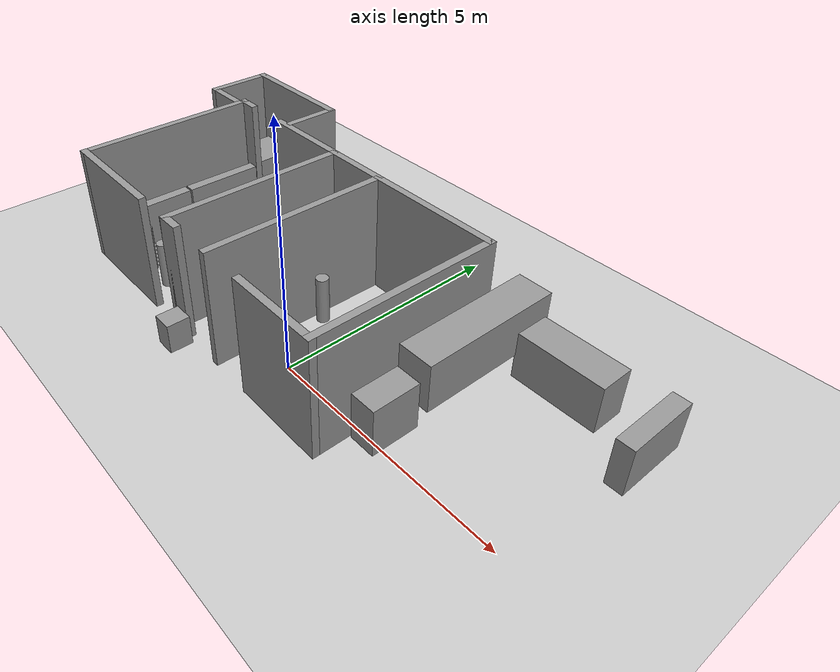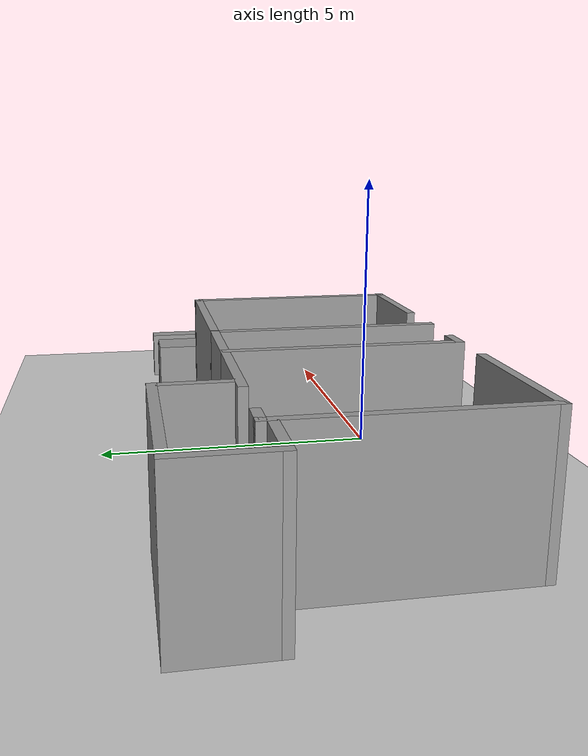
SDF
<sdf version="1.9">
 <world name="default">
  <model name="ground_plane">
   <static>true</static>
   <link name="link">
    <collision name="collision">
     <geometry><plane><normal>0 0 1</normal><size>100 100</size></plane></geometry>
     <surface><friction><ode><mu>100</mu><mu2>50</mu2></ode></friction></surface>
    </collision>
    <visual name="visual">
     <cast_shadows>false</cast_shadows>
     <geometry><plane><normal>0 0 1</normal><size>100 100</size></plane></geometry>
     <material>
      <script><uri>file://media/materials/scripts/gazebo.material</uri><name>Gazebo/Grey</name></script>
     </material>
    </visual>
   </link>
  </model>
  <model name="cma_escritorio">
   <pose>-1.8304 1.03024 0 0 0 0</pose>
   <link name="Wall_11">
    <collision name="Wall_11_Collision">
     <geometry><box><size>2 0.14999999999999999 2.5</size></box></geometry>
     <pose>0 0 1.25 0 0 0</pose>
    </collision>
    <visual name="Wall_11_Visual">
     <pose>0 0 1.25 0 0 0</pose>
     <geometry><box><size>2 0.14999999999999999 2.5</size></box></geometry>
     <material>
      <script><uri>file://media/materials/scripts/gazebo.material</uri><name>Gazebo/Grey</name></script>
      <ambient>1 1 1 1</ambient>
     </material>
    </visual>
    <pose>-1.3999999999999999 1.9299999999999999 0 0 0 3.1415899999999999</pose>
   </link>
   <link name="Wall_2">
    <collision name="Wall_2_Collision">
     <geometry><box><size>4 0.14999999999999999 2.5</size></box></geometry>
     <pose>0 0 1.25 0 0 0</pose>
    </collision>
    <visual name="Wall_2_Visual">
     <pose>0 0 1.25 0 0 0</pose>
     <geometry><box><size>4 0.14999999999999999 2.5</size></box></geometry>
     <material>
      <script><uri>file://media/materials/scripts/gazebo.material</uri><name>Gazebo/Grey</name></script>
      <ambient>1 1 1 1</ambient>
     </material>
    </visual>
    <pose>0.875 0.0050000000000000001 0 0 0 1.5708</pose>
   </link>
   <link name="Wall_25">
    <collision name="Wall_25_Collision">
     <geometry><box><size>2.5 0.14999999999999999 2.5</size></box></geometry>
     <pose>0 0 1.25 0 0 0</pose>
    </collision>
    <visual name="Wall_25_Visual">
     <pose>0 0 1.25 0 0 0</pose>
     <geometry><box><size>2.5 0.14999999999999999 2.5</size></box></geometry>
     <material>
      <script><uri>file://media/materials/scripts/gazebo.material</uri><name>Gazebo/Grey</name></script>
      <ambient>1 1 1 1</ambient>
     </material>
    </visual>
    <pose>-2.5499999999999998 -1.9299999999999999 0 0 0 3.1415899999999999</pose>
   </link>
   <link name="Wall_26">
    <collision name="Wall_26_Collision">
     <geometry><box><size>4 0.14999999999999999 2.5</size></box></geometry>
     <pose>0 0 1.25 0 0 0</pose>
    </collision>
    <visual name="Wall_26_Visual">
     <pose>0 0 1.25 0 0 0</pose>
     <geometry><box><size>4 0.14999999999999999 2.5</size></box></geometry>
     <material>
      <script><uri>file://media/materials/scripts/gazebo.material</uri><name>Gazebo/Grey</name></script>
      <ambient>1 1 1 1</ambient>
     </material>
    </visual>
    <pose>-3.7250000000000001 -0.0050000000000000001 0 0 0 1.5708</pose>
   </link>
   <link name="Wall_27">
    <collision name="Wall_27_Collision">
     <geometry><box><size>0.5 0.14999999999999999 2.5</size></box></geometry>
     <pose>0 0 1.25 0 0 0</pose>
    </collision>
    <visual name="Wall_27_Visual">
     <pose>0 0 1.25 0 0 0</pose>
     <geometry><box><size>0.5 0.14999999999999999 2.5</size></box></geometry>
     <material>
      <script><uri>file://media/materials/scripts/gazebo.material</uri><name>Gazebo/Grey</name></script>
      <ambient>1 1 1 1</ambient>
     </material>
    </visual>
    <pose>-3.5499999999999998 1.9199999999999999 0 0 0 0</pose>
   </link>
   <link name="Wall_3">
    <collision name="Wall_3_Collision">
     <geometry><box><size>3 0.14999999999999999 2.5</size></box></geometry>
     <pose>0 0 1.25 0 0 0</pose>
    </collision>
    <visual name="Wall_3_Visual">
     <pose>0 0 1.25 0 0 0</pose>
     <geometry><box><size>3 0.14999999999999999 2.5</size></box></geometry>
     <material>
      <script><uri>file://media/materials/scripts/gazebo.material</uri><name>Gazebo/Grey</name></script>
      <ambient>1 1 1 1</ambient>
     </material>
    </visual>
    <pose>2.2999999999999998 1.9299999999999999 0 0 0 0</pose>
   </link>
   <link name="Wall_4">
    <collision name="Wall_4_Collision">
     <geometry><box><size>4 0.14999999999999999 2.5</size></box></geometry>
     <pose>0 0 1.25 0 0 0</pose>
    </collision>
    <visual name="Wall_4_Visual">
     <pose>0 0 1.25 0 0 0</pose>
     <geometry><box><size>4 0.14999999999999999 2.5</size></box></geometry>
     <material>
      <script><uri>file://media/materials/scripts/gazebo.material</uri><name>Gazebo/Grey</name></script>
      <ambient>1 1 1 1</ambient>
     </material>
    </visual>
    <pose>3.7250000000000001 0.0050000000000000001 0 0 0 -1.5708</pose>
   </link>
   <link name="Wall_5">
    <collision name="Wall_5_Collision">
     <geometry><box><size>2 0.14999999999999999 2.5</size></box></geometry>
     <pose>0 0 1.25 0 0 0</pose>
    </collision>
    <visual name="Wall_5_Visual">
     <pose>0 0 1.25 0 0 0</pose>
     <geometry><box><size>2 0.14999999999999999 2.5</size></box></geometry>
     <material>
      <script><uri>file://media/materials/scripts/gazebo.material</uri><name>Gazebo/Grey</name></script>
      <ambient>1 1 1 1</ambient>
     </material>
    </visual>
    <pose>2.7999999999999998 -1.9199999999999999 0 0 0 3.1415899999999999</pose>
   </link>
   <link name="Wall_7">
    <collision name="Wall_7_Collision">
     <geometry><box><size>1.5 0.14999999999999999 2.5</size></box></geometry>
     <pose>0 0 1.25 0 0 0</pose>
    </collision>
    <visual name="Wall_7_Visual">
     <pose>0 0 1.25 0 0 0</pose>
     <geometry><box><size>1.5 0.14999999999999999 2.5</size></box></geometry>
     <material>
      <script><uri>file://media/materials/scripts/gazebo.material</uri><name>Gazebo/Grey</name></script>
      <ambient>1 1 1 1</ambient>
     </material>
    </visual>
    <pose>0.20000000000000001 1.9299999999999999 0 0 0 3.1415899999999999</pose>
   </link>
   <link name="Wall_8">
    <collision name="Wall_8_Collision">
     <geometry><box><size>4 0.14999999999999999 2.5</size></box></geometry>
     <pose>0 0 1.25 0 0 0</pose>
    </collision>
    <visual name="Wall_8_Visual">
     <pose>0 0 1.25 0 0 0</pose>
     <geometry><box><size>4 0.14999999999999999 2.5</size></box></geometry>
     <material>
      <script><uri>file://media/materials/scripts/gazebo.material</uri><name>Gazebo/Grey</name></script>
      <ambient>1 1 1 1</ambient>
     </material>
    </visual>
    <pose>-0.47499999999999998 0.0050000000000000001 0 0 0 -1.5708</pose>
   </link>
   <link name="Wall_9">
    <collision name="Wall_9_Collision">
     <geometry><box><size>0.5 0.14999999999999999 2.5</size></box></geometry>
     <pose>0 0 1.25 0 0 0</pose>
    </collision>
    <visual name="Wall_9_Visual">
     <pose>0 0 1.25 0 0 0</pose>
     <geometry><box><size>0.5 0.14999999999999999 2.5</size></box></geometry>
     <material>
      <script><uri>file://media/materials/scripts/gazebo.material</uri><name>Gazebo/Grey</name></script>
      <ambient>1 1 1 1</ambient>
     </material>
    </visual>
    <pose>-0.29999999999999999 -1.9199999999999999 0 0 0 0</pose>
   </link>
   <static>true</static>
  </model>
  <model name="cma_banheiro">
   <pose>-5.2292800000000002 3.4870999999999999 0 0 0 0</pose>
   <link name="Wall_0">
    <collision name="Wall_0_Collision">
     <geometry><box><size>1 0.14999999999999999 2.5</size></box></geometry>
     <pose>0 0 1.25 0 0 0</pose>
    </collision>
    <visual name="Wall_0_Visual">
     <pose>0 0 1.25 0 0 0</pose>
     <geometry><box><size>1 0.14999999999999999 2.5</size></box></geometry>
     <material>
      <script><uri>file://media/materials/scripts/gazebo.material</uri><name>Gazebo/Grey</name></script>
      <ambient>1 1 1 1</ambient>
     </material>
    </visual>
    <pose>-0.875 -0.67500000000000004 0 0 0 3.1415899999999999</pose>
   </link>
   <link name="Wall_1">
    <collision name="Wall_1_Collision">
     <geometry><box><size>1.5 0.14999999999999999 2.5</size></box></geometry>
     <pose>0 0 1.25 0 0 0</pose>
    </collision>
    <visual name="Wall_1_Visual">
     <pose>0 0 1.25 0 0 0</pose>
     <geometry><box><size>1.5 0.14999999999999999 2.5</size></box></geometry>
     <material>
      <script><uri>file://media/materials/scripts/gazebo.material</uri><name>Gazebo/Grey</name></script>
      <ambient>1 1 1 1</ambient>
     </material>
    </visual>
    <pose>-1.3 0 0 0 0 1.5708</pose>
   </link>
   <link name="Wall_2">
    <collision name="Wall_2_Collision">
     <geometry><box><size>2.75 0.14999999999999999 2.5</size></box></geometry>
     <pose>0 0 1.25 0 0 0</pose>
    </collision>
    <visual name="Wall_2_Visual">
     <pose>0 0 1.25 0 0 0</pose>
     <geometry><box><size>2.75 0.14999999999999999 2.5</size></box></geometry>
     <material>
      <script><uri>file://media/materials/scripts/gazebo.material</uri><name>Gazebo/Grey</name></script>
      <ambient>1 1 1 1</ambient>
     </material>
    </visual>
    <pose>0 0.67500000000000004 0 0 0 0</pose>
   </link>
   <link name="Wall_4">
    <collision name="Wall_4_Collision">
     <geometry><box><size>1.25 0.14999999999999999 2.5</size></box></geometry>
     <pose>0 0 1.25 0 0 0</pose>
    </collision>
    <visual name="Wall_4_Visual">
     <pose>0 0 1.25 0 0 0</pose>
     <geometry><box><size>1.25 0.14999999999999999 2.5</size></box></geometry>
     <material>
      <script><uri>file://media/materials/scripts/gazebo.material</uri><name>Gazebo/Grey</name></script>
      <ambient>1 1 1 1</ambient>
     </material>
    </visual>
    <pose>1.3 0.125 0 0 0 -1.5708</pose>
   </link>
   <static>true</static>
  </model>
  <model name="cma_lixo_0">
   <link name="link_1">
    <pose>0.88296200000000002 1.81586 0.5 0 0 0</pose>
    <inertial>
     <mass>0.068764400000000003</mass>
     <inertia>
      <ixx>0.00602588</ixx>
      <ixy>0</ixy>
      <ixz>0</ixz>
      <iyy>0.00602588</iyy>
      <iyz>0</iyz>
      <izz>0.00059106800000000004</izz>
     </inertia>
    </inertial>
    <visual name="visual">
     <geometry><cylinder><radius>0.13111200000000001</radius><length>1</length></cylinder></geometry>
     <material>
      <lighting>true</lighting>
      <script><uri>file://media/materials/scripts/gazebo.material</uri><name>Gazebo/Grey</name></script>
      <ambient>0.300000012 0.300000012 0.300000012 1</ambient>
      <diffuse>0.699999988 0.699999988 0.699999988 1</diffuse>
      <specular>0.00999999978 0.00999999978 0.00999999978 1</specular>
      <emissive>0 0 0 1</emissive>
     </material>
    </visual>
    <collision name="collision">
     <geometry><cylinder><radius>0.13111200000000001</radius><length>1</length></cylinder></geometry>
     <surface>
      <friction>
       <ode><mu>1</mu><mu2>1</mu2><fdir1>0 0 0</fdir1><slip1>0</slip1><slip2>0</slip2></ode>
       <torsional>
        <coefficient>1</coefficient>
        <patch_radius>0</patch_radius>
        <surface_radius>0</surface_radius>
        <use_patch_radius>true</use_patch_radius>
        <ode><slip>0</slip></ode>
       </torsional>
      </friction>
      <bounce><restitution_coefficient>0</restitution_coefficient><threshold>1000000</threshold></bounce>
      <contact>
       <collide_without_contact>false</collide_without_contact>
       <collide_without_contact_bitmask>1</collide_without_contact_bitmask>
       <collide_bitmask>1</collide_bitmask>
       <ode>
        <soft_cfm>0</soft_cfm>
        <soft_erp>0.20000000000000001</soft_erp>
        <kp>10000000000000</kp>
        <kd>1</kd>
        <max_vel>0.01</max_vel>
        <min_depth>0</min_depth>
       </ode>
       <bullet>
        <split_impulse>true</split_impulse>
        <split_impulse_penetration_threshold>-0.01</split_impulse_penetration_threshold>
        <soft_cfm>0</soft_cfm>
        <soft_erp>0.20000000000000001</soft_erp>
        <kp>10000000000000</kp>
        <kd>1</kd>
       </bullet>
      </contact>
     </surface>
    </collision>
   </link>
   <static>false</static>
   <pose>-1.6093500000000001 -0.44273099999999999 -9.9999999999999995e-07 0 0 -0.0097769999999999992</pose>
  </model>
  <model name="cma_bau_s">
   <link name="link_1">
    <pose>0.109594 0.27229300000000001 0 0 0 0</pose>
    <inertial>
     <mass>0.12547900000000001</mass>
     <inertia>
      <ixx>0.0064194300000000003</ixx>
      <ixy>0</ixy>
      <ixz>0</ixz>
      <iyy>0.0059753999999999996</iyy>
      <iyz>0</iyz>
      <izz>0.0042208499999999999</izz>
     </inertia>
    </inertial>
    <visual name="visual">
     <geometry><box><size>0.42496400000000001 0.47228300000000001 0.62511799999999995</size></box></geometry>
     <material>
      <lighting>true</lighting>
      <script><uri>file://media/materials/scripts/gazebo.material</uri><name>Gazebo/Grey</name></script>
      <ambient>0.300000012 0.300000012 0.300000012 1</ambient>
      <diffuse>0.699999988 0.699999988 0.699999988 1</diffuse>
      <specular>0.00999999978 0.00999999978 0.00999999978 1</specular>
      <emissive>0 0 0 1</emissive>
     </material>
    </visual>
    <collision name="collision">
     <geometry><box><size>0.42496400000000001 0.47228300000000001 0.62511799999999995</size></box></geometry>
     <surface>
      <friction>
       <ode><mu>1</mu><mu2>1</mu2><fdir1>0 0 0</fdir1><slip1>0</slip1><slip2>0</slip2></ode>
       <torsional>
        <coefficient>1</coefficient>
        <patch_radius>0</patch_radius>
        <surface_radius>0</surface_radius>
        <use_patch_radius>true</use_patch_radius>
        <ode><slip>0</slip></ode>
       </torsional>
      </friction>
      <bounce><restitution_coefficient>0</restitution_coefficient><threshold>1000000</threshold></bounce>
      <contact>
       <collide_without_contact>false</collide_without_contact>
       <collide_without_contact_bitmask>1</collide_without_contact_bitmask>
       <collide_bitmask>1</collide_bitmask>
       <ode>
        <soft_cfm>0</soft_cfm>
        <soft_erp>0.20000000000000001</soft_erp>
        <kp>10000000000000</kp>
        <kd>1</kd>
        <max_vel>0.01</max_vel>
        <min_depth>0</min_depth>
       </ode>
       <bullet>
        <split_impulse>true</split_impulse>
        <split_impulse_penetration_threshold>-0.01</split_impulse_penetration_threshold>
        <soft_cfm>0</soft_cfm>
        <soft_erp>0.20000000000000001</soft_erp>
        <kp>10000000000000</kp>
        <kd>1</kd>
       </bullet>
      </contact>
     </surface>
    </collision>
   </link>
   <static>false</static>
   <pose>-2.0429400000000002 -1.48569 0.31255300000000003 1.2999999999999999e-05 -3.0000000000000005e-06 0.00013300000000000001</pose>
  </model>
  <model name="cma_cama_c_0">
   <link name="link_0">
    <pose>5.0000000000000004e-06 -3.9999999999999998e-06 0 0 0 0</pose>
    <inertial>
     <mass>3.1835800000000001</mass>
     <inertia>
      <ixx>0.93486199999999997</ixx>
      <ixy>0</ixy>
      <ixz>0</ixz>
      <iyy>1.3306899999999999</iyy>
      <iyz>0</iyz>
      <izz>1.7349600000000001</izz>
     </inertia>
    </inertial>
    <visual name="visual">
     <geometry><box><size>2.0039400000000001 1.58866 1</size></box></geometry>
     <material>
      <lighting>true</lighting>
      <script><uri>file://media/materials/scripts/gazebo.material</uri><name>Gazebo/Grey</name></script>
      <ambient>0.300000012 0.300000012 0.300000012 1</ambient>
      <diffuse>0.699999988 0.699999988 0.699999988 1</diffuse>
      <specular>0.00999999978 0.00999999978 0.00999999978 1</specular>
      <emissive>0 0 0 1</emissive>
     </material>
    </visual>
    <collision name="collision">
     <geometry><box><size>2.0039400000000001 1.58866 1</size></box></geometry>
     <surface>
      <friction>
       <ode><mu>1</mu><mu2>1</mu2><fdir1>0 0 0</fdir1><slip1>0</slip1><slip2>0</slip2></ode>
       <torsional>
        <coefficient>1</coefficient>
        <patch_radius>0</patch_radius>
        <surface_radius>0</surface_radius>
        <use_patch_radius>true</use_patch_radius>
        <ode><slip>0</slip></ode>
       </torsional>
      </friction>
      <bounce><restitution_coefficient>0</restitution_coefficient><threshold>1000000</threshold></bounce>
      <contact>
       <collide_without_contact>false</collide_without_contact>
       <collide_without_contact_bitmask>1</collide_without_contact_bitmask>
       <collide_bitmask>1</collide_bitmask>
       <ode>
        <soft_cfm>0</soft_cfm>
        <soft_erp>0.20000000000000001</soft_erp>
        <kp>10000000000000</kp>
        <kd>1</kd>
        <max_vel>0.01</max_vel>
        <min_depth>0</min_depth>
       </ode>
       <bullet>
        <split_impulse>true</split_impulse>
        <split_impulse_penetration_threshold>-0.01</split_impulse_penetration_threshold>
        <soft_cfm>0</soft_cfm>
        <soft_erp>0.20000000000000001</soft_erp>
        <kp>10000000000000</kp>
        <kd>1</kd>
       </bullet>
      </contact>
     </surface>
    </collision>
   </link>
   <static>false</static>
   <pose>-3.3823799999999999 1.3878699999999999 0.5 0 0 -2.0000000000000003e-06</pose>
  </model>
  <model name="cma_bau_s_0">
   <link name="link_1">
    <pose>0.109594 0.27229300000000001 0 0 0 0</pose>
    <inertial>
     <mass>0.12547900000000001</mass>
     <inertia>
      <ixx>0.0064194300000000003</ixx>
      <ixy>0</ixy>
      <ixz>0</ixz>
      <iyy>0.0059753999999999996</iyy>
      <iyz>0</iyz>
      <izz>0.0042208499999999999</izz>
     </inertia>
    </inertial>
    <visual name="visual">
     <geometry><box><size>0.42496400000000001 0.47228300000000001 0.62511799999999995</size></box></geometry>
     <material>
      <lighting>true</lighting>
      <script><uri>file://media/materials/scripts/gazebo.material</uri><name>Gazebo/Grey</name></script>
      <ambient>0.300000012 0.300000012 0.300000012 1</ambient>
      <diffuse>0.699999988 0.699999988 0.699999988 1</diffuse>
      <specular>0.00999999978 0.00999999978 0.00999999978 1</specular>
      <emissive>0 0 0 1</emissive>
     </material>
    </visual>
    <collision name="collision">
     <geometry><box><size>0.42496400000000001 0.47228300000000001 0.62511799999999995</size></box></geometry>
     <surface>
      <friction>
       <ode><mu>1</mu><mu2>1</mu2><fdir1>0 0 0</fdir1><slip1>0</slip1><slip2>0</slip2></ode>
       <torsional>
        <coefficient>1</coefficient>
        <patch_radius>0</patch_radius>
        <surface_radius>0</surface_radius>
        <use_patch_radius>true</use_patch_radius>
        <ode><slip>0</slip></ode>
       </torsional>
      </friction>
      <bounce><restitution_coefficient>0</restitution_coefficient><threshold>1000000</threshold></bounce>
      <contact>
       <collide_without_contact>false</collide_without_contact>
       <collide_without_contact_bitmask>1</collide_without_contact_bitmask>
       <collide_bitmask>1</collide_bitmask>
       <ode>
        <soft_cfm>0</soft_cfm>
        <soft_erp>0.20000000000000001</soft_erp>
        <kp>10000000000000</kp>
        <kd>1</kd>
        <max_vel>0.01</max_vel>
        <min_depth>0</min_depth>
       </ode>
       <bullet>
        <split_impulse>true</split_impulse>
        <split_impulse_penetration_threshold>-0.01</split_impulse_penetration_threshold>
        <soft_cfm>0</soft_cfm>
        <soft_erp>0.20000000000000001</soft_erp>
        <kp>10000000000000</kp>
        <kd>1</kd>
       </bullet>
      </contact>
     </surface>
    </collision>
   </link>
   <static>false</static>
   <pose>-2.7651500000000002 2.2427800000000002 0.312554 9.0000000000000002e-06 8.000000000000003e-06 -0.00012700000000000008</pose>
  </model>
  <model name="cma_gaveteiro_1">
   <link name="link_0">
    <pose>0 3.9999999999999998e-06 0 0 0 0</pose>
    <inertial>
     <mass>0.245086</mass>
     <inertia>
      <ixx>0.025418</ixx>
      <ixy>0</ixy>
      <ixz>0</ixz>
      <iyy>0.025441100000000001</iyy>
      <iyz>0</iyz>
      <izz>0.010011300000000001</izz>
     </inertia>
    </inertial>
    <visual name="visual">
     <geometry><box><size>0.49565700000000001 0.49449100000000001 1</size></box></geometry>
     <material>
      <lighting>true</lighting>
      <script><uri>file://media/materials/scripts/gazebo.material</uri><name>Gazebo/Grey</name></script>
      <ambient>0.300000012 0.300000012 0.300000012 1</ambient>
      <diffuse>0.699999988 0.699999988 0.699999988 1</diffuse>
      <specular>0.00999999978 0.00999999978 0.00999999978 1</specular>
      <emissive>0 0 0 1</emissive>
     </material>
    </visual>
    <collision name="collision">
     <geometry><box><size>0.49565700000000001 0.49449100000000001 1</size></box></geometry>
     <surface>
      <friction>
       <ode><mu>1</mu><mu2>1</mu2><fdir1>0 0 0</fdir1><slip1>0</slip1><slip2>0</slip2></ode>
       <torsional>
        <coefficient>1</coefficient>
        <patch_radius>0</patch_radius>
        <surface_radius>0</surface_radius>
        <use_patch_radius>true</use_patch_radius>
        <ode><slip>0</slip></ode>
       </torsional>
      </friction>
      <bounce><restitution_coefficient>0</restitution_coefficient><threshold>1000000</threshold></bounce>
      <contact>
       <collide_without_contact>false</collide_without_contact>
       <collide_without_contact_bitmask>1</collide_without_contact_bitmask>
       <collide_bitmask>1</collide_bitmask>
       <ode>
        <soft_cfm>0</soft_cfm>
        <soft_erp>0.20000000000000001</soft_erp>
        <kp>10000000000000</kp>
        <kd>1</kd>
        <max_vel>0.01</max_vel>
        <min_depth>0</min_depth>
       </ode>
       <bullet>
        <split_impulse>true</split_impulse>
        <split_impulse_penetration_threshold>-0.01</split_impulse_penetration_threshold>
        <soft_cfm>0</soft_cfm>
        <soft_erp>0.20000000000000001</soft_erp>
        <kp>10000000000000</kp>
        <kd>1</kd>
       </bullet>
      </contact>
     </surface>
    </collision>
   </link>
   <static>false</static>
   <pose>-2.68859 0.13162499999999999 0.50000100000000003 9.9999999999999995e-07 -1.0000000000000004e-06 -0.00015200000000000001</pose>
  </model>
  <model name="cma_armario_6">
   <link name="link_0">
    <pose>1.3215699999999999 0.88517800000000002 0.5 0 0 0</pose>
    <inertial>
     <mass>0.40237600000000001</mass>
     <inertia>
      <ixx>0.0353686</ixx>
      <ixy>0</ixy>
      <ixz>0</ixz>
      <iyy>0.13261600000000001</iyy>
      <iyz>0</iyz>
      <izz>0.100922</izz>
     </inertia>
    </inertial>
    <visual name="visual">
     <geometry><box><size>1.7187699999999999 0.234069 1</size></box></geometry>
     <material>
      <lighting>true</lighting>
      <script><uri>file://media/materials/scripts/gazebo.material</uri><name>Gazebo/Grey</name></script>
      <ambient>0.300000012 0.300000012 0.300000012 1</ambient>
      <diffuse>0.699999988 0.699999988 0.699999988 1</diffuse>
      <specular>0.00999999978 0.00999999978 0.00999999978 1</specular>
      <emissive>0 0 0 1</emissive>
     </material>
    </visual>
    <collision name="collision">
     <geometry><box><size>1.7187699999999999 0.234069 1</size></box></geometry>
     <surface>
      <friction>
       <ode><mu>1</mu><mu2>1</mu2><fdir1>0 0 0</fdir1><slip1>0</slip1><slip2>0</slip2></ode>
       <torsional>
        <coefficient>1</coefficient>
        <patch_radius>0</patch_radius>
        <surface_radius>0</surface_radius>
        <use_patch_radius>true</use_patch_radius>
        <ode><slip>0</slip></ode>
       </torsional>
      </friction>
      <bounce><restitution_coefficient>0</restitution_coefficient><threshold>1000000</threshold></bounce>
      <contact>
       <collide_without_contact>false</collide_without_contact>
       <collide_without_contact_bitmask>1</collide_without_contact_bitmask>
       <collide_bitmask>1</collide_bitmask>
       <ode>
        <soft_cfm>0</soft_cfm>
        <soft_erp>0.20000000000000001</soft_erp>
        <kp>10000000000000</kp>
        <kd>1</kd>
        <max_vel>0.01</max_vel>
        <min_depth>0</min_depth>
       </ode>
       <bullet>
        <split_impulse>true</split_impulse>
        <split_impulse_penetration_threshold>-0.01</split_impulse_penetration_threshold>
        <soft_cfm>0</soft_cfm>
        <soft_erp>0.20000000000000001</soft_erp>
        <kp>10000000000000</kp>
        <kd>1</kd>
       </bullet>
      </contact>
     </surface>
    </collision>
   </link>
   <static>false</static>
   <pose>-4.3866199999999997 0.68751700000000004 0 0 0 1.5658799999999999</pose>
  </model>
  <model name="cma_armario_7">
   <link name="link_0">
    <pose>1.3215699999999999 0.88517800000000002 0.5 0 0 0</pose>
    <inertial>
     <mass>0.40237600000000001</mass>
     <inertia>
      <ixx>0.0353686</ixx>
      <ixy>0</ixy>
      <ixz>0</ixz>
      <iyy>0.13261600000000001</iyy>
      <iyz>0</iyz>
      <izz>0.100922</izz>
     </inertia>
    </inertial>
    <visual name="visual">
     <geometry><box><size>1.7187699999999999 0.234069 1</size></box></geometry>
     <material>
      <lighting>true</lighting>
      <script><uri>file://media/materials/scripts/gazebo.material</uri><name>Gazebo/Grey</name></script>
      <ambient>0.300000012 0.300000012 0.300000012 1</ambient>
      <diffuse>0.699999988 0.699999988 0.699999988 1</diffuse>
      <specular>0.00999999978 0.00999999978 0.00999999978 1</specular>
      <emissive>0 0 0 1</emissive>
     </material>
    </visual>
    <collision name="collision">
     <geometry><box><size>1.7187699999999999 0.234069 1</size></box></geometry>
     <surface>
      <friction>
       <ode><mu>1</mu><mu2>1</mu2><fdir1>0 0 0</fdir1><slip1>0</slip1><slip2>0</slip2></ode>
       <torsional>
        <coefficient>1</coefficient>
        <patch_radius>0</patch_radius>
        <surface_radius>0</surface_radius>
        <use_patch_radius>true</use_patch_radius>
        <ode><slip>0</slip></ode>
       </torsional>
      </friction>
      <bounce><restitution_coefficient>0</restitution_coefficient><threshold>1000000</threshold></bounce>
      <contact>
       <collide_without_contact>false</collide_without_contact>
       <collide_without_contact_bitmask>1</collide_without_contact_bitmask>
       <collide_bitmask>1</collide_bitmask>
       <ode>
        <soft_cfm>0</soft_cfm>
        <soft_erp>0.20000000000000001</soft_erp>
        <kp>10000000000000</kp>
        <kd>1</kd>
        <max_vel>0.01</max_vel>
        <min_depth>0</min_depth>
       </ode>
       <bullet>
        <split_impulse>true</split_impulse>
        <split_impulse_penetration_threshold>-0.01</split_impulse_penetration_threshold>
        <soft_cfm>0</soft_cfm>
        <soft_erp>0.20000000000000001</soft_erp>
        <kp>10000000000000</kp>
        <kd>1</kd>
       </bullet>
      </contact>
     </surface>
    </collision>
   </link>
   <static>false</static>
   <pose>-4.3857299999999997 -1.06551 0 0 0 1.5687</pose>
  </model>
  <model name="cma_lixo_2">
   <link name="link_1">
    <pose>0.88296200000000002 1.81586 0.5 0 0 0</pose>
    <inertial>
     <mass>0.068764400000000003</mass>
     <inertia>
      <ixx>0.00602588</ixx>
      <ixy>0</ixy>
      <ixz>0</ixz>
      <iyy>0.00602588</iyy>
      <iyz>0</iyz>
      <izz>0.00059106800000000004</izz>
     </inertia>
    </inertial>
    <visual name="visual">
     <geometry><cylinder><radius>0.13111200000000001</radius><length>1</length></cylinder></geometry>
     <material>
      <lighting>true</lighting>
      <script><uri>file://media/materials/scripts/gazebo.material</uri><name>Gazebo/Grey</name></script>
      <ambient>0.300000012 0.300000012 0.300000012 1</ambient>
      <diffuse>0.699999988 0.699999988 0.699999988 1</diffuse>
      <specular>0.00999999978 0.00999999978 0.00999999978 1</specular>
      <emissive>0 0 0 1</emissive>
     </material>
    </visual>
    <collision name="collision">
     <geometry><cylinder><radius>0.13111200000000001</radius><length>1</length></cylinder></geometry>
     <surface>
      <friction>
       <ode><mu>1</mu><mu2>1</mu2><fdir1>0 0 0</fdir1><slip1>0</slip1><slip2>0</slip2></ode>
       <torsional>
        <coefficient>1</coefficient>
        <patch_radius>0</patch_radius>
        <surface_radius>0</surface_radius>
        <use_patch_radius>true</use_patch_radius>
        <ode><slip>0</slip></ode>
       </torsional>
      </friction>
      <bounce><restitution_coefficient>0</restitution_coefficient><threshold>1000000</threshold></bounce>
      <contact>
       <collide_without_contact>false</collide_without_contact>
       <collide_without_contact_bitmask>1</collide_without_contact_bitmask>
       <collide_bitmask>1</collide_bitmask>
       <ode>
        <soft_cfm>0</soft_cfm>
        <soft_erp>0.20000000000000001</soft_erp>
        <kp>10000000000000</kp>
        <kd>1</kd>
        <max_vel>0.01</max_vel>
        <min_depth>0</min_depth>
       </ode>
       <bullet>
        <split_impulse>true</split_impulse>
        <split_impulse_penetration_threshold>-0.01</split_impulse_penetration_threshold>
        <soft_cfm>0</soft_cfm>
        <soft_erp>0.20000000000000001</soft_erp>
        <kp>10000000000000</kp>
        <kd>1</kd>
       </bullet>
      </contact>
     </surface>
    </collision>
   </link>
   <static>false</static>
   <pose>-5.2734199999999998 -2.2134499999999999 -9.0000000000000002e-06 0 0 0</pose>
  </model>
  <model name="cma_lixo_3">
   <link name="link_1">
    <pose>0.88296200000000002 1.81586 0.5 0 0 0</pose>
    <inertial>
     <mass>0.068764400000000003</mass>
     <inertia>
      <ixx>0.00602588</ixx>
      <ixy>0</ixy>
      <ixz>0</ixz>
      <iyy>0.00602588</iyy>
      <iyz>0</iyz>
      <izz>0.00059106800000000004</izz>
     </inertia>
    </inertial>
    <visual name="visual">
     <geometry><cylinder><radius>0.13111200000000001</radius><length>1</length></cylinder></geometry>
     <material>
      <lighting>true</lighting>
      <script><uri>file://media/materials/scripts/gazebo.material</uri><name>Gazebo/Grey</name></script>
      <ambient>0.300000012 0.300000012 0.300000012 1</ambient>
      <diffuse>0.699999988 0.699999988 0.699999988 1</diffuse>
      <specular>0.00999999978 0.00999999978 0.00999999978 1</specular>
      <emissive>0 0 0 1</emissive>
     </material>
    </visual>
    <collision name="collision">
     <geometry><cylinder><radius>0.13111200000000001</radius><length>1</length></cylinder></geometry>
     <surface>
      <friction>
       <ode><mu>1</mu><mu2>1</mu2><fdir1>0 0 0</fdir1><slip1>0</slip1><slip2>0</slip2></ode>
       <torsional>
        <coefficient>1</coefficient>
        <patch_radius>0</patch_radius>
        <surface_radius>0</surface_radius>
        <use_patch_radius>true</use_patch_radius>
        <ode><slip>0</slip></ode>
       </torsional>
      </friction>
      <bounce><restitution_coefficient>0</restitution_coefficient><threshold>1000000</threshold></bounce>
      <contact>
       <collide_without_contact>false</collide_without_contact>
       <collide_without_contact_bitmask>1</collide_without_contact_bitmask>
       <collide_bitmask>1</collide_bitmask>
       <ode>
        <soft_cfm>0</soft_cfm>
        <soft_erp>0.20000000000000001</soft_erp>
        <kp>10000000000000</kp>
        <kd>1</kd>
        <max_vel>0.01</max_vel>
        <min_depth>0</min_depth>
       </ode>
       <bullet>
        <split_impulse>true</split_impulse>
        <split_impulse_penetration_threshold>-0.01</split_impulse_penetration_threshold>
        <soft_cfm>0</soft_cfm>
        <soft_erp>0.20000000000000001</soft_erp>
        <kp>10000000000000</kp>
        <kd>1</kd>
       </bullet>
      </contact>
     </surface>
    </collision>
   </link>
   <static>false</static>
   <pose>-4.5749500000000003 -2.2090000000000001 -9.0000000000000002e-06 0 0 0</pose>
  </model>
  <model name="cma_armario_coz_190x70cm">
   <link name="link_0">
    <pose>5.2095799999999999 2.97661 0.5 0 0 -1.5706800000000001</pose>
    <inertial>
     <mass>1.2966</mass>
     <inertia>
      <ixx>0.45447700000000002</ixx>
      <ixy>0</ixy>
      <ixz>0</ixz>
      <iyy>0.16470599999999999</iyy>
      <iyz>0</iyz>
      <izz>0.403084</izz>
     </inertia>
    </inertial>
    <visual name="visual">
     <geometry><box><size>0.72418400000000005 1.7905800000000001 1</size></box></geometry>
     <material>
      <lighting>true</lighting>
      <script><uri>file://media/materials/scripts/gazebo.material</uri><name>Gazebo/Grey</name></script>
      <ambient>0.300000012 0.300000012 0.300000012 1</ambient>
      <diffuse>0.699999988 0.699999988 0.699999988 1</diffuse>
      <specular>0.00999999978 0.00999999978 0.00999999978 1</specular>
      <emissive>0 0 0 1</emissive>
     </material>
    </visual>
    <collision name="collision">
     <geometry><box><size>0.72418400000000005 1.7905800000000001 1</size></box></geometry>
     <surface>
      <friction>
       <ode><mu>1</mu><mu2>1</mu2><fdir1>0 0 0</fdir1><slip1>0</slip1><slip2>0</slip2></ode>
       <torsional>
        <coefficient>1</coefficient>
        <patch_radius>0</patch_radius>
        <surface_radius>0</surface_radius>
        <use_patch_radius>true</use_patch_radius>
        <ode><slip>0</slip></ode>
       </torsional>
      </friction>
      <bounce><restitution_coefficient>0</restitution_coefficient><threshold>1000000</threshold></bounce>
      <contact>
       <collide_without_contact>false</collide_without_contact>
       <collide_without_contact_bitmask>1</collide_without_contact_bitmask>
       <collide_bitmask>1</collide_bitmask>
       <ode>
        <soft_cfm>0</soft_cfm>
        <soft_erp>0.20000000000000001</soft_erp>
        <kp>10000000000000</kp>
        <kd>1</kd>
        <max_vel>0.01</max_vel>
        <min_depth>0</min_depth>
       </ode>
       <bullet>
        <split_impulse>true</split_impulse>
        <split_impulse_penetration_threshold>-0.01</split_impulse_penetration_threshold>
        <soft_cfm>0</soft_cfm>
        <soft_erp>0.20000000000000001</soft_erp>
        <kp>10000000000000</kp>
        <kd>1</kd>
       </bullet>
      </contact>
     </surface>
    </collision>
   </link>
   <model name="cma_armario_coz_100x50cm">
    <link name="link_0">
     <pose>-3.0000000000000001e-06 -3.0000000000000001e-06 0 0 0 0</pose>
     <inertial>
      <mass>0.53619300000000003</mass>
      <inertia>
       <ixx>0.089365700000000006</ixx>
       <ixy>0</ixy>
       <ixz>0</ixz>
       <iyy>0.057529299999999998</iyy>
       <iyz>0</iyz>
       <izz>0.057529299999999998</izz>
      </inertia>
     </inertial>
     <visual name="visual">
      <geometry><box><size>0.53619300000000003 1 1</size></box></geometry>
      <material>
       <lighting>true</lighting>
       <script><uri>file://media/materials/scripts/gazebo.material</uri><name>Gazebo/Grey</name></script>
       <ambient>0.300000012 0.300000012 0.300000012 1</ambient>
       <diffuse>0.699999988 0.699999988 0.699999988 1</diffuse>
       <specular>0.00999999978 0.00999999978 0.00999999978 1</specular>
       <emissive>0 0 0 1</emissive>
      </material>
     </visual>
     <collision name="collision">
      <geometry><box><size>0.53619300000000003 1 1</size></box></geometry>
      <surface>
       <friction>
        <ode><mu>1</mu><mu2>1</mu2><fdir1>0 0 0</fdir1><slip1>0</slip1><slip2>0</slip2></ode>
        <torsional>
         <coefficient>1</coefficient>
         <patch_radius>0</patch_radius>
         <surface_radius>0</surface_radius>
         <use_patch_radius>true</use_patch_radius>
         <ode><slip>0</slip></ode>
        </torsional>
       </friction>
       <bounce><restitution_coefficient>0</restitution_coefficient><threshold>1000000</threshold></bounce>
       <contact>
        <collide_without_contact>false</collide_without_contact>
        <collide_without_contact_bitmask>1</collide_without_contact_bitmask>
        <collide_bitmask>1</collide_bitmask>
        <ode>
         <soft_cfm>0</soft_cfm>
         <soft_erp>0.20000000000000001</soft_erp>
         <kp>10000000000000</kp>
         <kd>1</kd>
         <max_vel>0.01</max_vel>
         <min_depth>0</min_depth>
        </ode>
        <bullet>
         <split_impulse>true</split_impulse>
         <split_impulse_penetration_threshold>-0.01</split_impulse_penetration_threshold>
         <soft_cfm>0</soft_cfm>
         <soft_erp>0.20000000000000001</soft_erp>
         <kp>10000000000000</kp>
         <kd>1</kd>
        </bullet>
       </contact>
      </surface>
     </collision>
    </link>
    <static>false</static>
    <pose>3.8645499999999999 -0.048915 0.5 0 0 0</pose>
   </model>
   <model name="cma_armario_coz_300x70cm">
    <link name="link_0">
     <pose>3.2642799999999998 1.5085599999999999 0.5 0 0 0</pose>
     <inertial>
      <mass>2.1383299999999998</mass>
      <inertia>
       <ixx>1.732</ixx>
       <ixy>0</ixy>
       <ixz>0</ixz>
       <iyy>0.27163700000000002</iyy>
       <iyz>0</iyz>
       <izz>1.6472500000000001</izz>
      </inertia>
     </inertial>
     <visual name="visual">
      <geometry><box><size>0.72418400000000005 2.9529000000000001 1</size></box></geometry>
      <material>
       <lighting>true</lighting>
       <script><uri>file://media/materials/scripts/gazebo.material</uri><name>Gazebo/Grey</name></script>
       <ambient>0.300000012 0.300000012 0.300000012 1</ambient>
       <diffuse>0.699999988 0.699999988 0.699999988 1</diffuse>
       <specular>0.00999999978 0.00999999978 0.00999999978 1</specular>
       <emissive>0 0 0 1</emissive>
      </material>
     </visual>
     <collision name="collision">
      <geometry><box><size>0.72418400000000005 2.9529000000000001 1</size></box></geometry>
      <surface>
       <friction>
        <ode><mu>1</mu><mu2>1</mu2><fdir1>0 0 0</fdir1><slip1>0</slip1><slip2>0</slip2></ode>
        <torsional>
         <coefficient>1</coefficient>
         <patch_radius>0</patch_radius>
         <surface_radius>0</surface_radius>
         <use_patch_radius>true</use_patch_radius>
         <ode><slip>0</slip></ode>
        </torsional>
       </friction>
       <bounce><restitution_coefficient>0</restitution_coefficient><threshold>1000000</threshold></bounce>
       <contact>
        <collide_without_contact>false</collide_without_contact>
        <collide_without_contact_bitmask>1</collide_without_contact_bitmask>
        <collide_bitmask>1</collide_bitmask>
        <ode>
         <soft_cfm>0</soft_cfm>
         <soft_erp>0.20000000000000001</soft_erp>
         <kp>10000000000000</kp>
         <kd>1</kd>
         <max_vel>0.01</max_vel>
         <min_depth>0</min_depth>
        </ode>
        <bullet>
         <split_impulse>true</split_impulse>
         <split_impulse_penetration_threshold>-0.01</split_impulse_penetration_threshold>
         <soft_cfm>0</soft_cfm>
         <soft_erp>0.20000000000000001</soft_erp>
         <kp>10000000000000</kp>
         <kd>1</kd>
        </bullet>
       </contact>
      </surface>
     </collision>
    </link>
    <static>false</static>
    <pose>0.70628899999999994 0.41883100000000001 0.5 0 0 0</pose>
   </model>
   <static>false</static>
   <pose>-1.5961000000000001 0.36388700000000002 0 0 0 0</pose>
  </model>
  <model name="cma_armario_coz_150x20cm">
   <link name="link_1">
    <pose>7.1868600000000002 2.7524700000000002 0.5 0 0 0</pose>
    <inertial>
     <mass>0.53157299999999996</mass>
     <inertia>
      <ixx>0.147651</ixx>
      <ixy>0</ixy>
      <ixz>0</ixz>
      <iyy>0.0496628</iyy>
      <iyz>0</iyz>
      <izz>0.108718</izz>
     </inertia>
    </inertial>
    <visual name="visual">
     <geometry><box><size>0.34802300000000003 1.52746 1</size></box></geometry>
     <material>
      <lighting>true</lighting>
      <script><uri>file://media/materials/scripts/gazebo.material</uri><name>Gazebo/Grey</name></script>
      <ambient>0.300000012 0.300000012 0.300000012 1</ambient>
      <diffuse>0.699999988 0.699999988 0.699999988 1</diffuse>
      <specular>0.00999999978 0.00999999978 0.00999999978 1</specular>
      <emissive>0 0 0 1</emissive>
     </material>
    </visual>
    <collision name="collision">
     <geometry><box><size>0.34802300000000003 1.52746 1</size></box></geometry>
     <surface>
      <friction>
       <ode><mu>1</mu><mu2>1</mu2><fdir1>0 0 0</fdir1><slip1>0</slip1><slip2>0</slip2></ode>
       <torsional>
        <coefficient>1</coefficient>
        <patch_radius>0</patch_radius>
        <surface_radius>0</surface_radius>
        <use_patch_radius>true</use_patch_radius>
        <ode><slip>0</slip></ode>
       </torsional>
      </friction>
      <bounce><restitution_coefficient>0</restitution_coefficient><threshold>1000000</threshold></bounce>
      <contact>
       <collide_without_contact>false</collide_without_contact>
       <collide_without_contact_bitmask>1</collide_without_contact_bitmask>
       <collide_bitmask>1</collide_bitmask>
       <ode>
        <soft_cfm>0</soft_cfm>
        <soft_erp>0.20000000000000001</soft_erp>
        <kp>10000000000000</kp>
        <kd>1</kd>
        <max_vel>0.01</max_vel>
        <min_depth>0</min_depth>
       </ode>
       <bullet>
        <split_impulse>true</split_impulse>
        <split_impulse_penetration_threshold>-0.01</split_impulse_penetration_threshold>
        <soft_cfm>0</soft_cfm>
        <soft_erp>0.20000000000000001</soft_erp>
        <kp>10000000000000</kp>
        <kd>1</kd>
       </bullet>
      </contact>
     </surface>
    </collision>
   </link>
   <static>false</static>
   <pose>-1.7943199999999999 0.26463100000000001 0 0 0 0</pose>
  </model>
  <model name="unit_box_5">
   <pose>-4.1233899999999997 3.5725899999999999 0.5 0 0 0</pose>
   <link name="link">
    <inertial>
     <mass>1</mass>
     <inertia>
      <ixx>0.16666700000000001</ixx>
      <ixy>0</ixy>
      <ixz>0</ixz>
      <iyy>0.16666700000000001</iyy>
      <iyz>0</iyz>
      <izz>0.16666700000000001</izz>
     </inertia>
    </inertial>
    <collision name="collision"><geometry><box><size>1 0.999997 0.999998</size></box></geometry></collision>
    <visual name="visual">
     <geometry><box><size>1 0.999997 0.999998</size></box></geometry>
     <material>
      <script><name>Gazebo/Grey</name><uri>file://media/materials/scripts/gazebo.material</uri></script>
     </material>
    </visual>
   </link>
  </model>
  <model name="cma_lixo_6">
   <link name="link_1">
    <pose>0.88296200000000002 1.81586 0.5 0 0 0</pose>
    <inertial>
     <mass>0.068764400000000003</mass>
     <inertia>
      <ixx>0.00602588</ixx>
      <ixy>0</ixy>
      <ixz>0</ixz>
      <iyy>0.00602588</iyy>
      <iyz>0</iyz>
      <izz>0.00059106800000000004</izz>
     </inertia>
    </inertial>
    <visual name="visual">
     <geometry><cylinder><radius>0.13111200000000001</radius><length>1</length></cylinder></geometry>
     <material>
      <lighting>true</lighting>
      <script><uri>file://media/materials/scripts/gazebo.material</uri><name>Gazebo/Grey</name></script>
      <ambient>0.300000012 0.300000012 0.300000012 1</ambient>
      <diffuse>0.699999988 0.699999988 0.699999988 1</diffuse>
      <specular>0.00999999978 0.00999999978 0.00999999978 1</specular>
      <emissive>0 0 0 1</emissive>
     </material>
    </visual>
    <collision name="collision">
     <geometry><cylinder><radius>0.13111200000000001</radius><length>1</length></cylinder></geometry>
     <surface>
      <friction>
       <ode><mu>1</mu><mu2>1</mu2><fdir1>0 0 0</fdir1><slip1>0</slip1><slip2>0</slip2></ode>
       <torsional>
        <coefficient>1</coefficient>
        <patch_radius>0</patch_radius>
        <surface_radius>0</surface_radius>
        <use_patch_radius>true</use_patch_radius>
        <ode><slip>0</slip></ode>
       </torsional>
      </friction>
      <bounce><restitution_coefficient>0</restitution_coefficient><threshold>1000000</threshold></bounce>
      <contact>
       <collide_without_contact>false</collide_without_contact>
       <collide_without_contact_bitmask>1</collide_without_contact_bitmask>
       <collide_bitmask>1</collide_bitmask>
       <ode>
        <soft_cfm>0</soft_cfm>
        <soft_erp>0.20000000000000001</soft_erp>
        <kp>10000000000000</kp>
        <kd>1</kd>
        <max_vel>0.01</max_vel>
        <min_depth>0</min_depth>
       </ode>
       <bullet>
        <split_impulse>true</split_impulse>
        <split_impulse_penetration_threshold>-0.01</split_impulse_penetration_threshold>
        <soft_cfm>0</soft_cfm>
        <soft_erp>0.20000000000000001</soft_erp>
        <kp>10000000000000</kp>
        <kd>1</kd>
       </bullet>
      </contact>
     </surface>
    </collision>
   </link>
   <static>false</static>
   <pose>-6.2083700000000004 2.00692 0 0 0 0</pose>
  </model>
  <model name="unit_box_6">
   <pose>-5.7614200000000002 3.5184700000000002 0.5 0 0 0</pose>
   <link name="link">
    <inertial>
     <mass>1</mass>
     <inertia>
      <ixx>0.16666700000000001</ixx>
      <ixy>0</ixy>
      <ixz>0</ixz>
      <iyy>0.16666700000000001</iyy>
      <iyz>0</iyz>
      <izz>0.16666700000000001</izz>
     </inertia>
    </inertial>
    <collision name="collision"><geometry><box><size>1 1 1</size></box></geometry></collision>
    <visual name="visual">
     <geometry><box><size>1 1 1</size></box></geometry>
     <material>
      <script><name>Gazebo/Grey</name><uri>file://media/materials/scripts/gazebo.material</uri></script>
     </material>
    </visual>
   </link>
  </model>
 </world>
</sdf>
